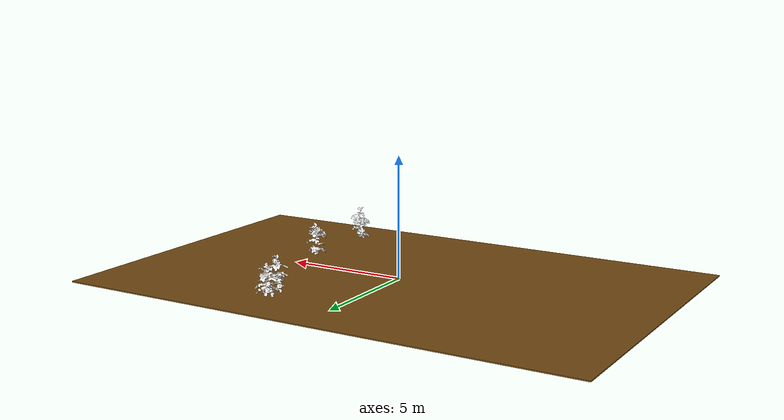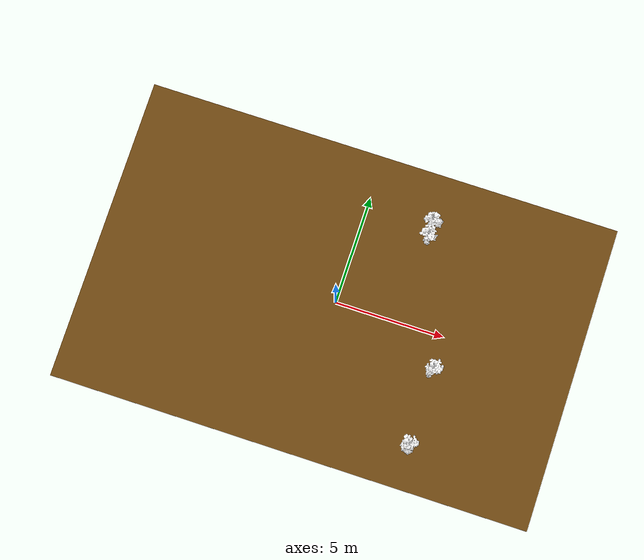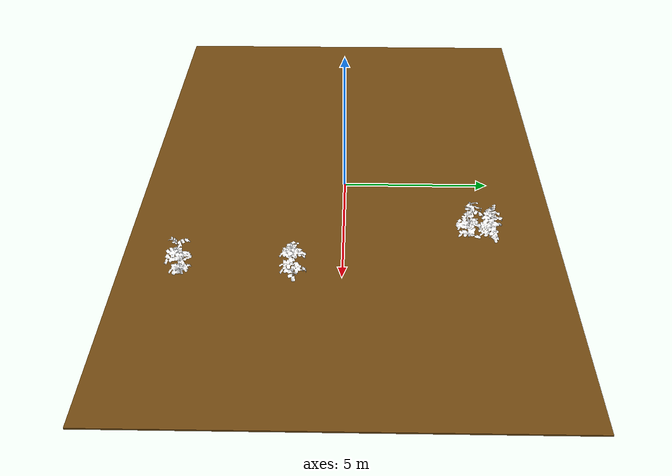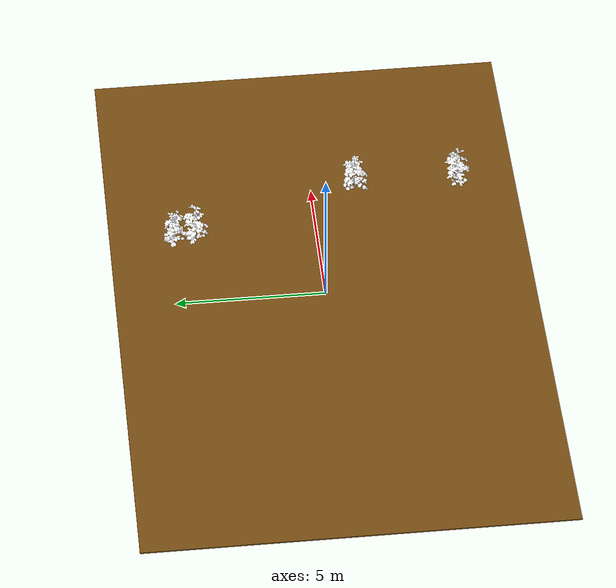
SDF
<sdf version="1.7">
 <world name="field">
  <light name="sun" type="directional">
   <pose>0 0 10 0 -0 0</pose>
   <diffuse>0.8 0.8 0.8 1</diffuse>
   <specular>0.2 0.2 0.2 1</specular>
   <attenuation>
    <range>1000</range>
    <constant>0.9</constant>
    <linear>0.01</linear>
    <quadratic>0.001</quadratic>
   </attenuation>
   <direction>-0.5 0.1 -0.9</direction>
   <spot><inner_angle>0</inner_angle><outer_angle>0</outer_angle><falloff>0</falloff></spot>
  </light>
  <model name="ground_plane">
   <static>true</static>
   <link name="link">
    <collision name="collision">
     <geometry><box><size>22 14 0.05</size></box></geometry>
     <surface>
      <contact><collide_bitmask>65535</collide_bitmask></contact>
      <friction><ode><mu>100</mu><mu2>50</mu2></ode></friction>
     </surface>
    </collision>
    <visual name="visual">
     <cast_shadows>0</cast_shadows>
     <geometry><box><size>22 14 0.05</size></box></geometry>
     <material>
      <ambient>0.45 0.29 0.07 1</ambient>
      <diffuse>0.45 0.29 0.07 1</diffuse>
      <specular>0.45 0.29 0.07 1</specular>
     </material>
    </visual>
   </link>
  </model>
  <gravity>0 0 -9.81</gravity>
  <magnetic_field>6e-06 2.3e-05 -4.2e-05</magnetic_field>
  <atmosphere type="adiabatic"/>
  <physics type="ode">
   <max_step_size>0.001</max_step_size>
   <real_time_factor>1</real_time_factor>
   <real_time_update_rate>1000</real_time_update_rate>
  </physics>
  <scene><ambient>0.4 0.4 0.4 1</ambient><background>0.7 0.7 0.7 1</background><shadows>1</shadows></scene>
  <audio><device>default</device></audio>
  <spherical_coordinates>
   <surface_model>EARTH_WGS84</surface_model>
   <latitude_deg>0</latitude_deg>
   <longitude_deg>0</longitude_deg>
   <elevation>0</elevation>
   <heading_deg>0</heading_deg>
  </spherical_coordinates>
  <include><uri>model://tomato_103</uri><name>tomato_103</name><pose>3.0 4.1 0 0 0 0</pose></include>
  <include>
   <uri>model://tomato_104</uri>
   <name>tomato_104</name>
   <pose>3.0 4.799999999999999 0 0 0 0</pose>
  </include>
  <include><uri>model://tomato_105</uri><name>tomato_105</name><pose>5.0 -5.0 0 0 0 0</pose></include>
  <include><uri>model://tomato_110</uri><name>tomato_110</name><pose>5.0 -1.5 0 0 0 0</pose></include>
 </world>
</sdf>
